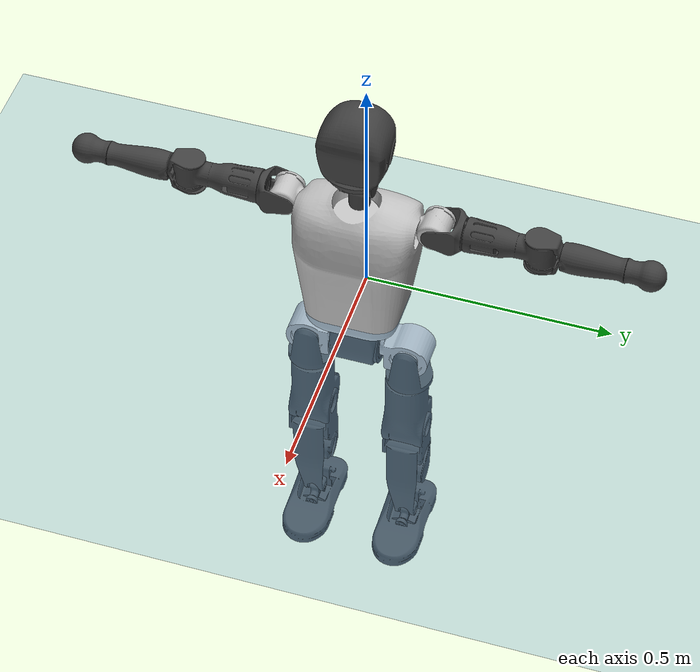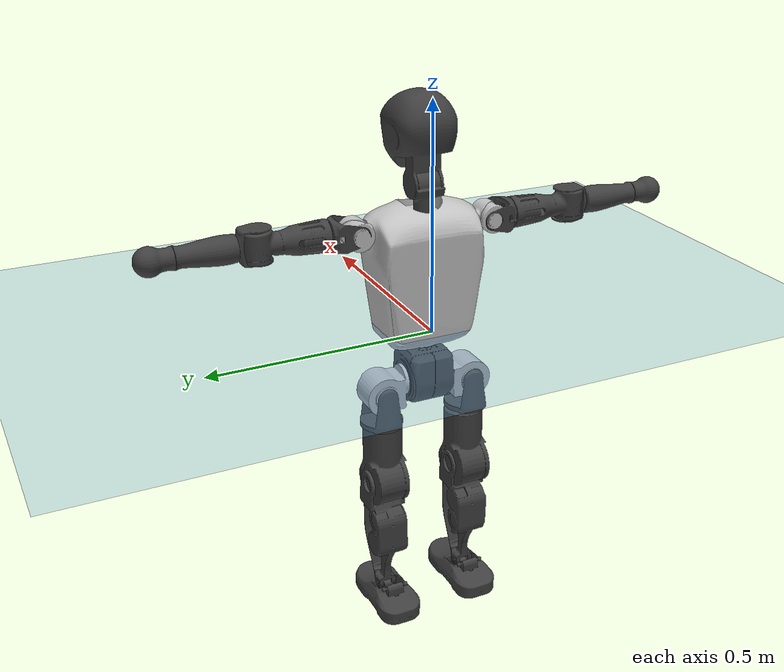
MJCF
<mujoco model="T1">
  <compiler angle="radian" assetdir="assets" balanceinertia="true" inertiafromgeom="false"/>

  <option timestep="0.005" density="1.2" viscosity="2e-05"/>

  <size nkey="1"/>

  <visual>
    <quality shadowsize="8192"/>
    <map shadowclip="0.5"/>
  </visual>

  <default>
    <default class="/">
      <joint armature="0.01" damping="0.01" frictionloss="0.1"/>
      <geom contype="0" conaffinity="0" group="1" solref="-1000 -80"/>
      <site size="0.01 0.005 0.005" group="5"/>
      <general forcelimited="true" biastype="affine" gainprm="25" biasprm="0 -25 -0.6"/>
      <default class="t1">
        <geom rgba="0.25 0.25 0.25 1"/>
        <default class="visual">
          <geom type="mesh" group="2"/>
        </default>
        <default class="collision">
          <geom group="3"/>
        </default>
        <default class="foot">
          <geom size="0.1115 0.05 0.015" type="box" condim="6" group="4" priority="1" solimp="0.015 1 0.015"/>
        </default>
        <default class="reward_collision_sphere">
          <geom group="5" rgba="1 0 0 1"/>
        </default>
      </default>
    </default>
  </default>

  <asset>
    <texture type="skybox" colorspace="auto" name="//unnamed_texture_0" builtin="gradient" rgb1="0.95 0.95 0.95" rgb2="0.95 0.95 0.95" width="100" height="600"/>
    <texture type="2d" colorspace="auto" name="texplane" builtin="checker" rgb1="0.345 0.575 0.748" rgb2="0.345 0.575 0.748" markrgb="1 1 1" width="512" height="512"/>
    <material name="MatPlane" class="/" texture="texplane" texuniform="true" texrepeat="2 2" specular="0.9"/>
    <mesh name="Trunk" class="/" file="Trunk.stl"/>
    <mesh name="H1" class="/" file="H1.stl"/>
    <mesh name="H2" class="/" file="H2.stl"/>
    <mesh name="AL1" class="/" file="AL1.stl"/>
    <mesh name="AL2" class="/" file="AL2.stl"/>
    <mesh name="AL3" class="/" file="AL3.stl"/>
    <mesh name="left_hand_link" class="/" file="left_hand_link.stl"/>
    <mesh name="AR1" class="/" file="AR1.stl"/>
    <mesh name="AR2" class="/" file="AR2.stl"/>
    <mesh name="AR3" class="/" file="AR3.stl"/>
    <mesh name="right_hand_link" class="/" file="right_hand_link.stl"/>
    <mesh name="Waist" class="/" file="Waist.stl"/>
    <mesh name="Hip_Pitch_Left" class="/" file="Hip_Pitch_Left.stl"/>
    <mesh name="Hip_Roll_Left" class="/" file="Hip_Roll_Left.stl"/>
    <mesh name="Hip_Yaw_Left" class="/" file="Hip_Yaw_Left.stl"/>
    <mesh name="Shank_Left" class="/" file="Shank_Left.stl"/>
    <mesh name="Ankle_Cross_Left" class="/" file="Ankle_Cross_Left.stl"/>
    <mesh name="left_foot_link" class="/" file="left_foot_link.stl"/>
    <mesh name="Hip_Pitch_Right" class="/" file="Hip_Pitch_Right.stl"/>
    <mesh name="Hip_Roll_Right" class="/" file="Hip_Roll_Right.stl"/>
    <mesh name="Hip_Yaw_Right" class="/" file="Hip_Yaw_Right.stl"/>
    <mesh name="Shank_Right" class="/" file="Shank_Right.stl"/>
    <mesh name="Ankle_Cross_Right" class="/" file="Ankle_Cross_Right.stl"/>
    <mesh name="right_foot_link" class="/" file="right_foot_link.stl"/>
  </asset>

  <worldbody>
    <geom name="floor" class="/" size="100 100 0.125" type="plane" group="0" material="MatPlane"/>
    <light name="toplight_shadow" class="/" pos="0 0 5" dir="0.0990148 0.0990148 -0.990148" type="directional" ambient="0.04 0.04 0.04" diffuse="0.55 0.55 0.55" specular="0.12 0.12 0.12"/>
    <light name="toplight_fill" class="/" pos="0 0 5" dir="0.0990148 0.0990148 -0.990148" type="directional" castshadow="false" ambient="0.04 0.04 0.04" diffuse="0.3 0.3 0.3" specular="0.08 0.08 0.08"/>
    <body name="trunk" childclass="t1" pos="0.0026668 0.000424702 0.000689545" quat="1 0.000333382 2.44496e-05 2.81746e-05">
      <inertial pos="0.0343387 -0.00104237 0.106465" quat="0.999889 -0.00513197 -0.0100541 0.00973154" mass="8.07375" diaginertia="0.00886405 0.0676865 0.0665768"/>
      <joint name="//unnamed_joint_0" type="free" armature="0" damping="0" frictionloss="0"/>
      <geom name="//unnamed_geom_1" class="visual" rgba="0.76 0.76 0.76 1" mesh="Trunk"/>
      <geom name="//unnamed_geom_2" class="collision" size="0.065959 0.0879453 0.131918" pos="0.037439 0 0.124682" type="box"/>
      <geom name="//unnamed_geom_3" class="reward_collision_sphere" size="0.101137" pos="0.037439 0 0.103901"/>
      <geom name="//unnamed_geom_4" class="reward_collision_sphere" size="0.0131918" pos="0.037439 0.0829059 0"/>
      <geom name="//unnamed_geom_5" class="reward_collision_sphere" size="0.0131918" pos="0.037439 -0.0829059 0"/>
      <geom name="//unnamed_geom_6" class="reward_collision_sphere" size="0.0131918" pos="0.037439 0.104364 0.187022"/>
      <geom name="//unnamed_geom_7" class="reward_collision_sphere" size="0.0131918" pos="0.037439 -0.104364 0.187022"/>
      <site name="imu" pos="-0.0038726 -0.0133341 0.0120723" size="0.00879453"/>
      <camera name="track" pos="0 -1.95073 0" quat="0.707107 0.707107 0 0" mode="trackcom"/>
      <camera name="ego_camera" pos="0.0761259 0 0.436386" quat="-0.5 -0.5 0.5 0.5"/>
      <body name="H1" pos="0.039086 -0.000702612 0.252507" quat="1 9.56405e-05 1.23147e-05 0.000863924">
        <inertial pos="-0.00344659 -0.000457568 0.0567985" quat="0.76501 -0.01591 0.00218003 0.643818" mass="0.312642" diaginertia="2.27755e-05 0.000198572 0.000184451"/>
        <joint name="AAHead_yaw" pos="0 0 0" axis="0.00536923 0.000969815 0.999985" stiffness="0.0024645" range="-1.55383 1.612" armature="0.00932683" damping="0.0147434" frictionloss="0.100349"/>
        <geom name="//unnamed_geom_8" class="visual" mesh="H1"/>
        <body name="H2" pos="0.00118334 0.000588586 0.0646801" quat="0.999999 -0.000235758 -0.000517739 0.000847346">
          <inertial pos="0.00438669 0.000961387 0.102962" quat="0.988227 0.108594 -0.0774866 -0.0749078" mass="0.429913" diaginertia="0.000182161 0.00164903 0.00211156"/>
          <joint name="Head_pitch" pos="0 0 0" axis="-0.000621093 -1 0.000253622" range="-1.18865 0.346228" armature="0.00983458" damping="0.00844982" frictionloss="0.0895334"/>
          <geom name="//unnamed_geom_9" class="visual" mesh="H2"/>
          <geom name="//unnamed_geom_10" class="collision" size="0.0703563" pos="0.00623983 0 0.114291"/>
          <geom name="//unnamed_geom_11" class="reward_collision_sphere" size="0.0791508" pos="0.0124797 0 0.103901"/>
        </body>
      </body>
      <body name="AL1" pos="0.0399405 0.104843 0.230693" quat="1 -8.04753e-05 0.000569565 0.000151412">
        <inertial pos="-0.000634476 0.0446447 -0.00215287" quat="0.50294 0.494251 -0.50063 0.502133" mass="0.386361" diaginertia="0.000138549 0.00122368 0.000370882"/>
        <joint name="Left_Shoulder_Pitch" pos="0 0 0" axis="-0.0130007 0.999912 -0.0024627" stiffness="0.0104711" range="-3.25193 1.23262" armature="0.00990053" damping="0.0158543" frictionloss="0.0765707"/>
        <geom name="//unnamed_geom_12" class="visual" rgba="0.76 0.76 0.76 1" mesh="AL1"/>
        <body name="AL2" pos="0.00184629 0.0477971 0.00297542" quat="0.999999 0.000924906 0.00033806 0.0010445">
          <inertial pos="0.00137487 0.0353737 0.00276071" quat="0.488235 0.51123 -0.488447 0.511556" mass="0.107136" diaginertia="3.94214e-05 0.000308857 0.000208985"/>
          <joint name="Left_Shoulder_Roll" pos="0 0 0" axis="-0.999957 -0.00480022 0.00795882" range="-1.51941 1.70875" armature="0.00884812" damping="0.00695444" frictionloss="0.0895059"/>
          <geom name="//unnamed_geom_13" class="visual" mesh="AL2"/>
          <body name="AL3" pos="0.00103742 0.06013 0.00206441" quat="0.999999 0.000231843 0.00134072 -0.000646719">
            <inertial pos="-0.00100872 0.0844874 0.00203265" quat="0.711341 0.702806 0.00718802 0.0025737" mass="0.705724" diaginertia="0.00127368 0.0115837 0.000766973"/>
            <joint name="Left_Elbow_Pitch" pos="0 0 0" axis="-0.000555761 -1 0.000770393" range="-2.25922 2.30477" armature="0.00806637" damping="0" frictionloss="0.0915901"/>
            <geom name="//unnamed_geom_14" class="visual" mesh="AL3"/>
            <geom name="//unnamed_geom_15" class="collision" size="0.0263836 0.065959" pos="0 0.0487682 0" quat="0.707105 0.707108 0 0" type="cylinder"/>
            <geom name="//unnamed_geom_16" class="reward_collision_sphere" size="0.0316603"/>
            <body name="left_hand_link" pos="0.00346357 0.143396 0.00158759" quat="0.999999 -0.000877317 0.000713456 -0.000112534">
              <inertial pos="-0.000387359 0.105183 0.00028834" quat="0.700278 0.713847 0.00201077 -0.00539517" mass="0.216181" diaginertia="0.000785174 0.00721847 0.000257708"/>
              <joint name="Left_Elbow_Yaw" pos="0 0 0" axis="0.00201534 0.00995268 0.999948" stiffness="0.00978883" range="-2.38494 -0.0558295" armature="0.00987039" damping="0.0235447" frictionloss="0.0972951"/>
              <geom name="//unnamed_geom_17" class="visual" mesh="left_hand_link"/>
              <geom name="//unnamed_geom_18" class="collision" size="0.0263836 0.0769522" pos="0 0.126797 0" quat="0.707105 0.707108 0 0" type="cylinder"/>
              <geom name="//unnamed_geom_19" class="reward_collision_sphere" size="0.0439727"/>
              <geom name="//unnamed_geom_20" class="reward_collision_sphere" size="0.0307809" pos="0 0.10729 0"/>
              <geom name="//unnamed_geom_21" class="reward_collision_sphere" size="0.0307809" pos="0 0.209703 0"/>
            </body>
          </body>
        </body>
      </body>
      <body name="AR1" pos="0.033088 -0.10448 0.226696" quat="0.999998 0.000141105 0.00143745 0.00101432">
        <inertial pos="0.00194102 -0.042143 -0.000172124" quat="0.503367 0.495758 -0.505255 0.495543" mass="0.361385" diaginertia="0.00012479 0.00113157 0.000356683"/>
        <joint name="Right_Shoulder_Pitch" pos="0 0 0" axis="-0.00109782 -0.999999 -0.000487642" stiffness="0.0108172" range="-1.24759 3.35018" armature="0.00981222" damping="0.00736024" frictionloss="0.075564"/>
        <geom name="//unnamed_geom_22" class="visual" rgba="0.76 0.76 0.76 1" mesh="AR1"/>
        <body name="AR2" pos="-0.00227137 -0.0420081 -0.00132139" quat="1 -8.74919e-05 0.000114707 7.38015e-06">
          <inertial pos="-0.000589188 -0.034825 -0.000533357" quat="0.50879 0.488875 -0.512376 0.489495" mass="0.111631" diaginertia="3.92672e-05 0.000313045 0.000228182"/>
          <joint name="Right_Shoulder_Roll" pos="0 0 0" axis="-0.999742 0.0198535 0.0110565" stiffness="0.000225873" range="-1.73699 1.56951" armature="0.0098676" damping="0.0109689" frictionloss="0.0924103"/>
          <geom name="//unnamed_geom_23" class="visual" mesh="AR2"/>
          <body name="AR3" pos="-0.00101739 -0.0565769 0.00167388" quat="1 0.000101297 0.000272258 -0.000318869">
            <inertial pos="-0.0011482 -0.081038 0.000521499" quat="0.703545 0.710535 -0.0123531 0.00351042" mass="0.697366" diaginertia="0.00121343 0.0112913 0.000761985"/>
            <joint name="Right_Elbow_Pitch" pos="0 0 0" axis="-0.0129107 0.999906 0.00460278" range="-2.27895 2.21331" armature="0.00873202" damping="0" frictionloss="0.0840391"/>
            <geom name="//unnamed_geom_24" class="visual" mesh="AR3"/>
            <geom name="//unnamed_geom_25" class="collision" size="0.0263836 0.065959" pos="0 -0.0487682 0" quat="0.707105 0.707108 0 0" type="cylinder"/>
            <geom name="//unnamed_geom_26" class="reward_collision_sphere" size="0.0316603"/>
            <body name="right_hand_link" pos="0.0019151 -0.140565 -4.27586e-05" quat="1 -4.08443e-05 0.00038566 0.000218496">
              <inertial pos="-0.00202483 -0.107389 0.00229292" quat="0.70637 0.707842 0.000209417 1.19567e-05" mass="0.224062" diaginertia="0.000782738 0.00705301 0.000251356"/>
              <joint name="Right_Elbow_Yaw" pos="0 0 0" axis="-0.00507367 0.00334965 0.999982" stiffness="0.00962408" range="0.0577514 2.39167" armature="0.0088309" damping="0" frictionloss="0.0825218"/>
              <geom name="//unnamed_geom_27" class="visual" mesh="right_hand_link"/>
              <geom name="//unnamed_geom_28" class="collision" size="0.0263836 0.0769522" pos="0 -0.126797 0" quat="0.707105 0.707108 0 0" type="cylinder"/>
              <geom name="//unnamed_geom_29" class="reward_collision_sphere" size="0.0439727"/>
              <geom name="//unnamed_geom_30" class="reward_collision_sphere" size="0.0307809" pos="0 -0.10729 0"/>
              <geom name="//unnamed_geom_31" class="reward_collision_sphere" size="0.0307809" pos="0 -0.209703 0"/>
            </body>
          </body>
        </body>
      </body>
      <body name="Waist" pos="0.0379587 -0.00053293 -0.117839" quat="1 -0.000100956 2.94707e-05 0.000292107">
        <inertial pos="0.000896501 -0.000443968 0.00845526" quat="0.982381 0.0114555 -0.186341 0.00861408" mass="1.70197" diaginertia="0.000507356 0.00474759 0.0057325"/>
        <joint name="Waist" pos="0 0 0" axis="-0.00424828 -0.0120204 0.999919" range="-1.62427 1.51254" armature="0.00877506" damping="0.0230082" frictionloss="0.0823721"/>
        <geom name="//unnamed_geom_32" class="visual" mesh="Waist"/>
        <body name="Hip_Pitch_Left" pos="-0.00117887 0.104247 -0.00229204" quat="1 -0.000529677 0.0002603 -0.000326399">
          <inertial pos="0.000992944 -0.00939694 -0.0168584" quat="0.977386 0.210191 0.022768 0.00428663" mass="0.706992" diaginertia="0.000166731 0.00133733 0.00155478"/>
          <joint name="Left_Hip_Pitch" pos="0 0 0" axis="0.0106938 0.999864 -0.0125352" stiffness="0.0133878" range="-1.84326 1.57059" armature="0.0097955" damping="0.0174131" frictionloss="0.0892874"/>
          <geom name="//unnamed_geom_33" class="visual" rgba="0.76 0.76 0.76 1" mesh="Hip_Pitch_Left"/>
          <body name="Hip_Roll_Left" pos="0.00128179 -0.00062389 -0.0214969" quat="1 0.000275508 0.000191655 0.000685713">
            <inertial pos="0.00394882 -0.00139671 -0.056279" quat="0.708996 -0.00506973 -0.0101259 0.705121" mass="0.25383" diaginertia="0.000163991 0.00133985 0.000623395"/>
            <joint name="Left_Hip_Roll" pos="0 0 0" axis="-0.999966 -0.007899 -0.00227206" stiffness="0.010311" range="-1.55206 0.214665" armature="0.00751414" damping="0" frictionloss="0.076579"/>
            <geom name="//unnamed_geom_34" class="visual" mesh="Hip_Roll_Left"/>
            <geom name="//unnamed_geom_35" class="reward_collision_sphere" size="0.0483699"/>
            <body name="Hip_Yaw_Left" pos="0.00342744 -0.00355019 -0.0827826" quat="1 -0.000168997 -0.000427267 0.000492006">
              <inertial pos="-0.00491716 -0.00281809 -0.0950533" quat="0.6957 -0.0393798 -0.026396 0.716767" mass="1.48319" diaginertia="0.00244499 0.0219378 0.003085"/>
              <joint name="Left_Hip_Yaw" pos="0 0 0" axis="-0.00950472 -0.00632114 -0.999935" stiffness="0.00226617" range="-0.996669 1.03872" armature="0.00899961" damping="0.0105574" frictionloss="0.0965191"/>
              <geom name="//unnamed_geom_36" class="visual" mesh="Hip_Yaw_Left"/>
              <geom name="//unnamed_geom_37" class="collision" size="0.0439727 0.0703563" type="cylinder"/>
              <body name="Shank_Left" pos="-0.0070296 0.00123645 -0.14233" quat="1 -0.000172394 0.00012514 0.00012112">
                <inertial pos="-0.004119 0.00204855 -0.127072" quat="0.997605 0.00206685 -0.0228234 0.0652592" mass="1.12266" diaginertia="0.0032379 0.0300245 0.0022969"/>
                <joint name="Left_Knee_Pitch" pos="0 0 0" axis="0.00201669 0.999959 0.0088611" range="-0.0124955 2.38751" armature="0.00772363" damping="0.0175442" frictionloss="0.0911228"/>
                <geom name="//unnamed_geom_38" class="visual" mesh="Shank_Left"/>
                <geom name="//unnamed_geom_39" class="collision" size="0.0439727 0.065959" pos="0 0 -0.124682" type="cylinder"/>
                <geom name="//unnamed_geom_40" class="reward_collision_sphere" size="0.0571645"/>
                <body name="Ankle_Cross_Left" pos="-0.00214427 -0.00220581 -0.288628" quat="1 5.82977e-05 -0.000134469 -0.000203141">
                  <inertial pos="-0.00205725 0.000945108 -0.00786086" quat="0.441835 0.550175 0.552431 0.443745" mass="0.0514378" diaginertia="2.93862e-06 2.36016e-05 1.4388e-05"/>
                  <joint name="Left_Ankle_Pitch" pos="0 0 0" axis="-0.0092752 0.999948 -0.00431899" range="-0.879599 0.297544" armature="0.00896304" damping="0" frictionloss="0.0758587"/>
                  <geom name="//unnamed_geom_41" class="visual" mesh="Ankle_Cross_Left"/>
                  <body name="left_foot_link" pos="0.000369731 -0.00128447 -0.0156064" quat="1 -6.65222e-05 0.000248887 -0.000125112">
                    <inertial pos="-0.000733718 0.00252753 -0.00961521" quat="0.000127631 0.620947 -0.000301639 0.783852" mass="0.458751" diaginertia="0.000256919 0.00213174 0.00257607"/>
                    <joint name="Left_Ankle_Roll" pos="0 0 0" axis="-0.999997 -0.00151411 -0.0016912" range="-0.38253 0.385752" armature="0.00893966" damping="0.0133778" frictionloss="0.0871994"/>
                    <geom name="//unnamed_geom_42" class="visual" mesh="left_foot_link"/>
                    <geom name="left_foot" class="foot" size="0.096493 0.045609 0.0119756" pos="0.00623983 0 -0.0155852"/>
                    <geom name="//unnamed_geom_44" class="reward_collision_sphere" size="0.0457316" pos="0.00623983 0 -0.0155852"/>
                    <geom name="//unnamed_geom_45" class="reward_collision_sphere" size="0.0263836" pos="0.0592784 -0.0224334 -0.0155852"/>
                    <geom name="//unnamed_geom_46" class="reward_collision_sphere" size="0.0263836" pos="-0.0436788 -0.0224334 -0.0155852"/>
                    <site name="left_foot" class="foot" pos="0.00623983 0 -0.0155852" size="0.00879453"/>
                  </body>
                </body>
              </body>
            </body>
          </body>
        </body>
        <body name="Hip_Pitch_Right" pos="-0.00252441 -0.10393 -0.00265414" quat="1 -0.000327431 0.000821068 0.00040348">
          <inertial pos="0.000277154 0.00781643 -0.0204865" quat="0.975555 -0.219393 0.0124335 -0.0021944" mass="0.693492" diaginertia="0.000169909 0.00131119 0.00156794"/>
          <joint name="Right_Hip_Pitch" pos="0 0 0" axis="0.00851523 -0.999919 0.00945754" range="-1.56091 1.8118" armature="0.00832439" damping="0.01778" frictionloss="0.0838854"/>
          <geom name="//unnamed_geom_47" class="visual" rgba="0.76 0.76 0.76 1" mesh="Hip_Pitch_Right"/>
          <body name="Hip_Roll_Right" pos="0.000459681 -0.000162684 -0.0186994" quat="1 -6.9256e-05 0.000220149 0.000576806">
            <inertial pos="-0.000705552 -0.00272092 -0.0537481" quat="0.707738 -0.00873293 -0.0154704 0.706251" mass="0.254529" diaginertia="0.000159587 0.00126211 0.000615999"/>
            <joint name="Right_Hip_Roll" pos="0 0 0" axis="-0.999994 -0.00153919 0.00324545" range="-0.195858 1.54171" armature="0.00745814" damping="0.0111478" frictionloss="0.0918591"/>
            <geom name="//unnamed_geom_48" class="visual" mesh="Hip_Roll_Right"/>
            <geom name="//unnamed_geom_49" class="reward_collision_sphere" size="0.0483699"/>
            <body name="Hip_Yaw_Right" pos="0.0016023 0.00261675 -0.0871132" quat="1 0.000227086 -0.00023805 -0.000257874">
              <inertial pos="-0.00138122 0.000688575 -0.0956494" quat="0.71491 -0.0317333 -0.0332479 0.697704" mass="1.47584" diaginertia="0.00243939 0.0216109 0.00303692"/>
              <joint name="Right_Hip_Yaw" pos="0 0 0" axis="0.000194987 0.000402738 -1" range="-1.04402 1.03971" armature="0.00857532" damping="0.000328776" frictionloss="0.0875377"/>
              <geom name="//unnamed_geom_50" class="visual" mesh="Hip_Yaw_Right"/>
              <geom name="//unnamed_geom_51" class="collision" size="0.0439727 0.0703563" type="cylinder"/>
              <body name="Shank_Right" pos="-0.00508874 -0.000518678 -0.137083" quat="1 -3.14952e-06 2.05834e-06 7.53863e-06">
                <inertial pos="-0.00385094 -0.00101282 -0.130367" quat="0.999456 0.00587089 -0.0234292 -0.0224759" mass="1.25377" diaginertia="0.00326696 0.0300755 0.00230974"/>
                <joint name="Right_Knee_Pitch" pos="0 0 0" axis="0.000803591 -0.999853 -0.0171019" range="-2.39849 -0.0138294" armature="0.00884289" damping="0.0212337" frictionloss="0.0758953"/>
                <geom name="//unnamed_geom_52" class="visual" mesh="Shank_Right"/>
                <geom name="//unnamed_geom_53" class="collision" size="0.0439727 0.065959" pos="0 0 -0.124682" type="cylinder"/>
                <geom name="//unnamed_geom_54" class="reward_collision_sphere" size="0.0571645"/>
                <body name="Ankle_Cross_Right" pos="0.000625235 0.00022764 -0.290448" quat="1 -0.000227523 1.13754e-05 -0.000153925">
                  <inertial pos="-0.00403706 -0.00192566 -0.00650631" quat="0.442854 0.548405 0.552761 0.444508" mass="0.0491041" diaginertia="2.72459e-06 2.21967e-05 1.36555e-05"/>
                  <joint name="Right_Ankle_Pitch" pos="0 0 0" axis="-0.0102112 -0.999941 -0.00375821" stiffness="0.00443931" range="-0.291823 0.868472" armature="0.00997044" damping="0.00736834" frictionloss="0.0921874"/>
                  <geom name="//unnamed_geom_55" class="visual" mesh="Ankle_Cross_Right"/>
                  <body name="right_foot_link" pos="0.00264133 -0.000331451 -0.0110378" quat="1 -1.37337e-05 -1.99595e-05 4.09267e-05">
                    <inertial pos="-0.00130868 0.00202465 -0.00806593" quat="0.00820766 0.624926 0.00983894 0.780579" mass="0.458631" diaginertia="0.000259931 0.00215869 0.00267663"/>
                    <joint name="Right_Ankle_Roll" pos="0 0 0" axis="-0.999992 0.000888968 0.00393076" range="-0.418311 0.385419" armature="0.00854096" damping="0.00861672" frictionloss="0.0763067"/>
                    <geom name="//unnamed_geom_56" class="visual" mesh="right_foot_link"/>
                    <geom name="right_foot" class="foot" size="0.114448 0.0475403 0.0146024" pos="0.00623983 0 -0.0155852"/>
                    <geom name="//unnamed_geom_58" class="reward_collision_sphere" size="0.0351781"/>
                    <geom name="//unnamed_geom_59" class="reward_collision_sphere" size="0.0263836" pos="0.00623983 0 -0.0155852"/>
                    <geom name="//unnamed_geom_60" class="reward_collision_sphere" size="0.0263836" pos="0.0592784 0.0224334 -0.0155852"/>
                    <geom name="//unnamed_geom_61" class="reward_collision_sphere" size="0.0263836" pos="-0.0436788 0.0224334 -0.0155852"/>
                    <site name="right_foot" class="foot" pos="0.00623983 0 -0.0155852" size="0.00879453"/>
                  </body>
                </body>
              </body>
            </body>
          </body>
        </body>
      </body>
    </body>
  </worldbody>

  <contact>
    <pair class="/" geom1="floor" geom2="left_foot" name="//unnamed_contact_0"/>
    <pair class="/" geom1="floor" geom2="right_foot" name="//unnamed_contact_1"/>
  </contact>

  <actuator>
    <general name="AAHead_yaw" class="/" joint="AAHead_yaw" forcerange="-6.74605 6.74605" gainprm="23.9662" biasprm="0 -23.9662 -0.493749"/>
    <general name="Head_pitch" class="/" joint="Head_pitch" forcerange="-6.3583 6.3583" gainprm="23.9662" biasprm="0 -23.9662 -0.493749"/>
    <general name="Left_Shoulder_Pitch" class="/" joint="Left_Shoulder_Pitch" forcerange="-15.2939 15.2939" gainprm="23.9662" biasprm="0 -23.9662 -0.493749"/>
    <general name="Left_Shoulder_Roll" class="/" joint="Left_Shoulder_Roll" forcerange="-16.3618 16.3618" gainprm="23.9662" biasprm="0 -23.9662 -0.493749"/>
    <general name="Left_Elbow_Pitch" class="/" joint="Left_Elbow_Pitch" forcerange="-17.2594 17.2594" gainprm="23.9662" biasprm="0 -23.9662 -0.493749"/>
    <general name="Left_Elbow_Yaw" class="/" joint="Left_Elbow_Yaw" forcerange="-17.5909 17.5909" gainprm="23.9662" biasprm="0 -23.9662 -0.493749"/>
    <general name="Right_Shoulder_Pitch" class="/" joint="Right_Shoulder_Pitch" forcerange="-14.2966 14.2966" gainprm="23.9662" biasprm="0 -23.9662 -0.493749"/>
    <general name="Right_Shoulder_Roll" class="/" joint="Right_Shoulder_Roll" forcerange="-15.0002 15.0002" gainprm="23.9662" biasprm="0 -23.9662 -0.493749"/>
    <general name="Right_Elbow_Pitch" class="/" joint="Right_Elbow_Pitch" forcerange="-16.1359 16.1359" gainprm="23.9662" biasprm="0 -23.9662 -0.493749"/>
    <general name="Right_Elbow_Yaw" class="/" joint="Right_Elbow_Yaw" forcerange="-16.6237 16.6237" gainprm="23.9662" biasprm="0 -23.9662 -0.493749"/>
    <general name="Waist" class="/" joint="Waist" forcerange="-25.9766 25.9766" gainprm="23.9662" biasprm="0 -23.9662 -0.493749"/>
    <general name="Left_Hip_Pitch" class="/" joint="Left_Hip_Pitch" forcerange="-39.0093 39.0093" gainprm="23.9662" biasprm="0 -23.9662 -0.493749"/>
    <general name="Left_Hip_Roll" class="/" joint="Left_Hip_Roll" forcerange="-27.0458 27.0458" gainprm="23.9662" biasprm="0 -23.9662 -0.493749"/>
    <general name="Left_Hip_Yaw" class="/" joint="Left_Hip_Yaw" forcerange="-24.0987 24.0987" gainprm="23.9662" biasprm="0 -23.9662 -0.493749"/>
    <general name="Left_Knee_Pitch" class="/" joint="Left_Knee_Pitch" forcerange="-57.9608 57.9608" gainprm="23.9662" biasprm="0 -23.9662 -0.493749"/>
    <general name="Left_Ankle_Pitch" class="/" joint="Left_Ankle_Pitch" forcerange="-15.7385 15.7385" gainprm="23.9662" biasprm="0 -23.9662 -0.493749"/>
    <general name="Left_Ankle_Roll" class="/" joint="Left_Ankle_Roll" forcerange="-13.7175 13.7175" gainprm="23.9662" biasprm="0 -23.9662 -0.493749"/>
    <general name="Right_Hip_Pitch" class="/" joint="Right_Hip_Pitch" forcerange="-40.9155 40.9155" gainprm="23.9662" biasprm="0 -23.9662 -0.493749"/>
    <general name="Right_Hip_Roll" class="/" joint="Right_Hip_Roll" forcerange="-25.957 25.957" gainprm="23.9662" biasprm="0 -23.9662 -0.493749"/>
    <general name="Right_Hip_Yaw" class="/" joint="Right_Hip_Yaw" forcerange="-24.2135 24.2135" gainprm="23.9662" biasprm="0 -23.9662 -0.493749"/>
    <general name="Right_Knee_Pitch" class="/" joint="Right_Knee_Pitch" forcerange="-48.4453 48.4453" gainprm="23.9662" biasprm="0 -23.9662 -0.493749"/>
    <general name="Right_Ankle_Pitch" class="/" joint="Right_Ankle_Pitch" forcerange="-16.6102 16.6102" gainprm="23.9662" biasprm="0 -23.9662 -0.493749"/>
    <general name="Right_Ankle_Roll" class="/" joint="Right_Ankle_Roll" forcerange="-14.2879 14.2879" gainprm="23.9662" biasprm="0 -23.9662 -0.493749"/>
  </actuator>

  <sensor>
    <gyro site="imu" name="imu_angular_velocity"/>
    <velocimeter site="imu" name="imu_linear_velocity"/>
    <framelinvel objtype="site" objname="left_foot" name="left_foot_global_linear_velocity"/>
    <framelinvel objtype="site" objname="right_foot" name="right_foot_global_linear_velocity"/>
  </sensor>

  <keyframe>
    <key name="home" qpos="0 0 0.6385 1 0 0 0 0 0 0 1.4 0 -0.4 0 -1.4 0 0.4 0 -0.4 0 0 0.8 -0.4 0 0.4 0 0 -0.8 0.4 0"/>
  </keyframe>
</mujoco>
